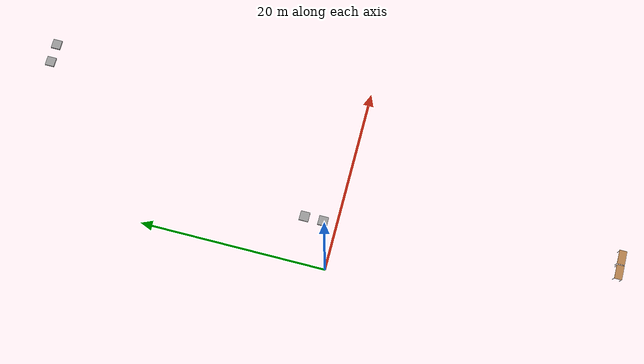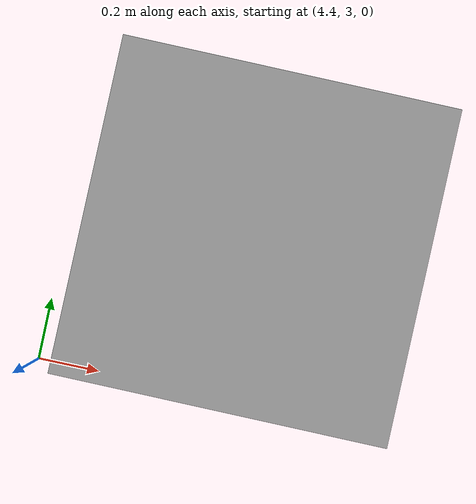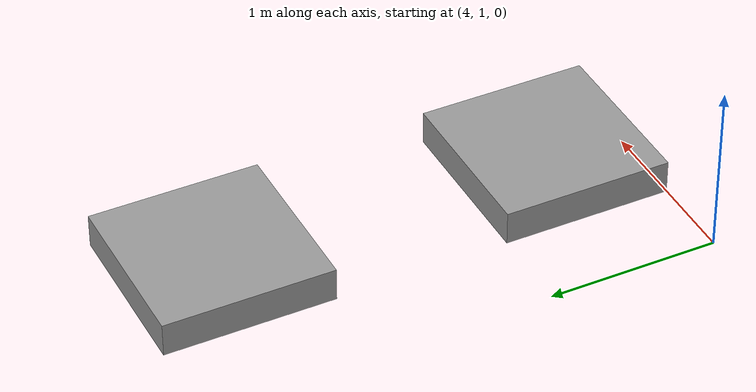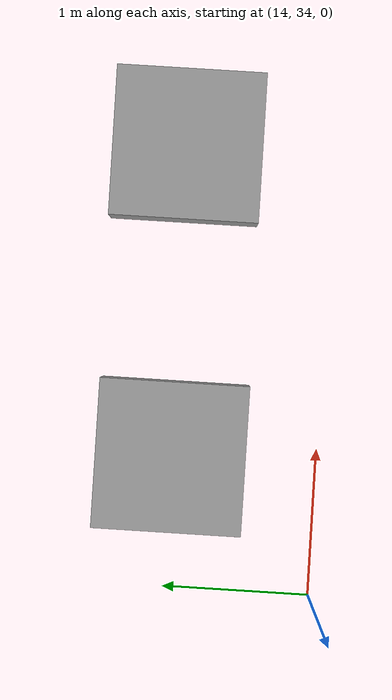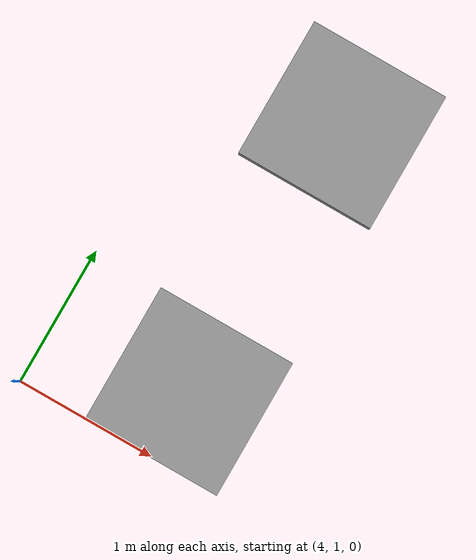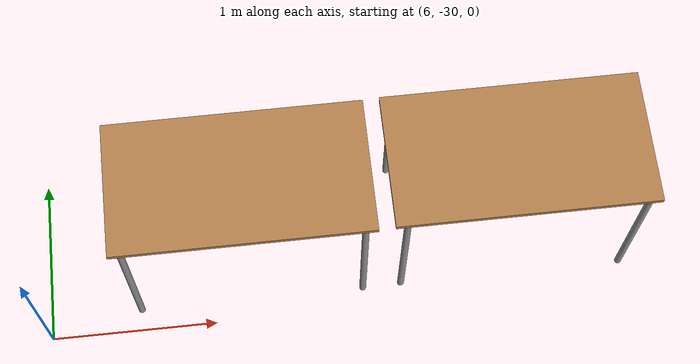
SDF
<sdf version="1.6">
 <world name="default">
  <light name="sun" type="directional">
   <pose>0 0 10 0 -0 0</pose>
   <diffuse>0.8 0.8 0.8 1</diffuse>
   <specular>0.2 0.2 0.2 1</specular>
   <attenuation>
    <range>1000</range>
    <constant>0.9</constant>
    <linear>0.01</linear>
    <quadratic>0.001</quadratic>
   </attenuation>
   <direction>-0.5 0.1 -0.9</direction>
  </light>
  <gravity>0 0 -9.8</gravity>
  <magnetic_field>6e-06 2.3e-05 -4.2e-05</magnetic_field>
  <atmosphere type="adiabatic"/>
  <physics name="default_physics" default="0" type="ode">
   <max_step_size>0.001</max_step_size>
   <real_time_factor>1</real_time_factor>
   <real_time_update_rate>1000</real_time_update_rate>
  </physics>
  <scene><ambient>0.4 0.4 0.4 1</ambient><background>0.7 0.7 0.7 1</background><shadows>1</shadows></scene>
  <audio><device>default</device></audio>
  <spherical_coordinates>
   <surface_model>EARTH_WGS84</surface_model>
   <latitude_deg>0</latitude_deg>
   <longitude_deg>0</longitude_deg>
   <elevation>0</elevation>
   <heading_deg>0</heading_deg>
  </spherical_coordinates>
  <model name="unit_box">
   <link name="link">
    <inertial>
     <mass>1</mass>
     <inertia>
      <ixx>0.166667</ixx>
      <ixy>0</ixy>
      <ixz>0</ixz>
      <iyy>0.166667</iyy>
      <iyz>0</iyz>
      <izz>0.166667</izz>
     </inertia>
    </inertial>
    <visual name="visual">
     <geometry><box><size>1 1 0.2</size></box></geometry>
     <material>
      <script><name>Gazebo/Grey</name><uri>file://media/materials/scripts/gazebo.material</uri></script>
      <shader type="vertex"><normal_map>__default__</normal_map></shader>
      <ambient>0.3 0.3 0.3 1</ambient>
      <diffuse>0.7 0.7 0.7 1</diffuse>
      <specular>0.01 0.01 0.01 1</specular>
      <emissive>0 0 0 1</emissive>
     </material>
    </visual>
    <collision name="collision">
     <geometry><box><size>1 1 0.2</size></box></geometry>
     <surface>
      <friction>
       <ode><mu>1</mu><mu2>1</mu2><fdir1>0 0 0</fdir1><slip1>0</slip1><slip2>0</slip2></ode>
       <torsional>
        <coefficient>1</coefficient>
        <patch_radius>0</patch_radius>
        <surface_radius>0</surface_radius>
        <use_patch_radius>1</use_patch_radius>
        <ode><slip>0</slip></ode>
       </torsional>
      </friction>
      <bounce><restitution_coefficient>0</restitution_coefficient><threshold>1e+06</threshold></bounce>
      <contact>
       <collide_without_contact>0</collide_without_contact>
       <collide_without_contact_bitmask>1</collide_without_contact_bitmask>
       <collide_bitmask>1</collide_bitmask>
       <ode>
        <soft_cfm>0</soft_cfm>
        <soft_erp>0.2</soft_erp>
        <kp>1e+13</kp>
        <kd>1</kd>
        <max_vel>0.01</max_vel>
        <min_depth>0</min_depth>
       </ode>
       <bullet>
        <split_impulse>1</split_impulse>
        <split_impulse_penetration_threshold>-0.01</split_impulse_penetration_threshold>
        <soft_cfm>0</soft_cfm>
        <soft_erp>0.2</soft_erp>
        <kp>1e+13</kp>
        <kd>1</kd>
       </bullet>
      </contact>
     </surface>
    </collision>
   </link>
   <static>0</static>
   <pose>14.9143 34.9914 0.1 0 0 -0.002971</pose>
  </model>
  <model name="unit_box_0">
   <link name="link">
    <inertial>
     <mass>1</mass>
     <inertia>
      <ixx>0.166667</ixx>
      <ixy>0</ixy>
      <ixz>0</ixz>
      <iyy>0.166667</iyy>
      <iyz>0</iyz>
      <izz>0.166667</izz>
     </inertia>
    </inertial>
    <visual name="visual">
     <geometry><box><size>1 1 0.2</size></box></geometry>
     <material>
      <script><name>Gazebo/Grey</name><uri>file://media/materials/scripts/gazebo.material</uri></script>
      <shader type="vertex"><normal_map>__default__</normal_map></shader>
      <ambient>0.3 0.3 0.3 1</ambient>
      <diffuse>0.7 0.7 0.7 1</diffuse>
      <specular>0.01 0.01 0.01 1</specular>
      <emissive>0 0 0 1</emissive>
     </material>
    </visual>
    <collision name="collision">
     <geometry><box><size>1 1 0.2</size></box></geometry>
     <surface>
      <friction>
       <ode><mu>1</mu><mu2>1</mu2><fdir1>0 0 0</fdir1><slip1>0</slip1><slip2>0</slip2></ode>
       <torsional>
        <coefficient>1</coefficient>
        <patch_radius>0</patch_radius>
        <surface_radius>0</surface_radius>
        <use_patch_radius>1</use_patch_radius>
        <ode><slip>0</slip></ode>
       </torsional>
      </friction>
      <bounce><restitution_coefficient>0</restitution_coefficient><threshold>1e+06</threshold></bounce>
      <contact>
       <collide_without_contact>0</collide_without_contact>
       <collide_without_contact_bitmask>1</collide_without_contact_bitmask>
       <collide_bitmask>1</collide_bitmask>
       <ode>
        <soft_cfm>0</soft_cfm>
        <soft_erp>0.2</soft_erp>
        <kp>1e+13</kp>
        <kd>1</kd>
        <max_vel>0.01</max_vel>
        <min_depth>0</min_depth>
       </ode>
       <bullet>
        <split_impulse>1</split_impulse>
        <split_impulse_penetration_threshold>-0.01</split_impulse_penetration_threshold>
        <soft_cfm>0</soft_cfm>
        <soft_erp>0.2</soft_erp>
        <kp>1e+13</kp>
        <kd>1</kd>
       </bullet>
      </contact>
     </surface>
    </collision>
   </link>
   <static>0</static>
   <pose>17 35 0.1 0 0 -0.000244</pose>
  </model>
  <model name="unit_box_1">
   <link name="link">
    <inertial>
     <mass>1</mass>
     <inertia>
      <ixx>0.166667</ixx>
      <ixy>0</ixy>
      <ixz>0</ixz>
      <iyy>0.166667</iyy>
      <iyz>0</iyz>
      <izz>0.166667</izz>
     </inertia>
    </inertial>
    <visual name="visual">
     <geometry><box><size>1 1 0.2</size></box></geometry>
     <material>
      <script><name>Gazebo/Grey</name><uri>file://media/materials/scripts/gazebo.material</uri></script>
      <shader type="vertex"><normal_map>__default__</normal_map></shader>
      <ambient>0.3 0.3 0.3 1</ambient>
      <diffuse>0.7 0.7 0.7 1</diffuse>
      <specular>0.01 0.01 0.01 1</specular>
      <emissive>0 0 0 1</emissive>
     </material>
    </visual>
    <collision name="collision">
     <geometry><box><size>1 1 0.2</size></box></geometry>
     <surface>
      <friction>
       <ode><mu>1</mu><mu2>1</mu2><fdir1>0 0 0</fdir1><slip1>0</slip1><slip2>0</slip2></ode>
       <torsional>
        <coefficient>1</coefficient>
        <patch_radius>0</patch_radius>
        <surface_radius>0</surface_radius>
        <use_patch_radius>1</use_patch_radius>
        <ode><slip>0</slip></ode>
       </torsional>
      </friction>
      <bounce><restitution_coefficient>0</restitution_coefficient><threshold>1e+06</threshold></bounce>
      <contact>
       <collide_without_contact>0</collide_without_contact>
       <collide_without_contact_bitmask>1</collide_without_contact_bitmask>
       <collide_bitmask>1</collide_bitmask>
       <ode>
        <soft_cfm>0</soft_cfm>
        <soft_erp>0.2</soft_erp>
        <kp>1e+13</kp>
        <kd>1</kd>
        <max_vel>0.01</max_vel>
        <min_depth>0</min_depth>
       </ode>
       <bullet>
        <split_impulse>1</split_impulse>
        <split_impulse_penetration_threshold>-0.01</split_impulse_penetration_threshold>
        <soft_cfm>0</soft_cfm>
        <soft_erp>0.2</soft_erp>
        <kp>1e+13</kp>
        <kd>1</kd>
       </bullet>
      </contact>
     </surface>
    </collision>
   </link>
   <static>0</static>
   <pose>5 1.5 0.1 0 -0 0</pose>
  </model>
  <model name="unit_box_2">
   <link name="link">
    <inertial>
     <mass>1</mass>
     <inertia>
      <ixx>0.166667</ixx>
      <ixy>0</ixy>
      <ixz>0</ixz>
      <iyy>0.166667</iyy>
      <iyz>0</iyz>
      <izz>0.166667</izz>
     </inertia>
    </inertial>
    <visual name="visual">
     <geometry><box><size>1 1 0.2</size></box></geometry>
     <material>
      <script><name>Gazebo/Grey</name><uri>file://media/materials/scripts/gazebo.material</uri></script>
      <shader type="vertex"><normal_map>__default__</normal_map></shader>
      <ambient>0.3 0.3 0.3 1</ambient>
      <diffuse>0.7 0.7 0.7 1</diffuse>
      <specular>0.01 0.01 0.01 1</specular>
      <emissive>0 0 0 1</emissive>
     </material>
    </visual>
    <collision name="collision">
     <geometry><box><size>1 1 0.2</size></box></geometry>
     <surface>
      <friction>
       <ode><mu>1</mu><mu2>1</mu2><fdir1>0 0 0</fdir1><slip1>0</slip1><slip2>0</slip2></ode>
       <torsional>
        <coefficient>1</coefficient>
        <patch_radius>0</patch_radius>
        <surface_radius>0</surface_radius>
        <use_patch_radius>1</use_patch_radius>
        <ode><slip>0</slip></ode>
       </torsional>
      </friction>
      <bounce><restitution_coefficient>0</restitution_coefficient><threshold>1e+06</threshold></bounce>
      <contact>
       <collide_without_contact>0</collide_without_contact>
       <collide_without_contact_bitmask>1</collide_without_contact_bitmask>
       <collide_bitmask>1</collide_bitmask>
       <ode>
        <soft_cfm>0</soft_cfm>
        <soft_erp>0.2</soft_erp>
        <kp>1e+13</kp>
        <kd>1</kd>
        <max_vel>0.01</max_vel>
        <min_depth>0</min_depth>
       </ode>
       <bullet>
        <split_impulse>1</split_impulse>
        <split_impulse_penetration_threshold>-0.01</split_impulse_penetration_threshold>
        <soft_cfm>0</soft_cfm>
        <soft_erp>0.2</soft_erp>
        <kp>1e+13</kp>
        <kd>1</kd>
       </bullet>
      </contact>
     </surface>
    </collision>
   </link>
   <static>0</static>
   <pose>4.99925 3.52222 0.1 0 0 -0.000992</pose>
  </model>
  <model name="table">
   <static>1</static>
   <link name="link">
    <collision name="surface">
     <pose>0 0 1 0 -0 0</pose>
     <geometry><box><size>1.5 0.8 0.03</size></box></geometry>
     <surface><friction><ode><mu>0.6</mu><mu2>0.6</mu2></ode></friction></surface>
    </collision>
    <visual name="visual1">
     <pose>0 0 1 0 -0 0</pose>
     <geometry><box><size>1.5 0.8 0.03</size></box></geometry>
     <material>
      <script><uri>file://media/materials/scripts/gazebo.material</uri><name>Gazebo/Wood</name></script>
     </material>
    </visual>
    <collision name="front_left_leg">
     <pose>0.68 0.38 0.5 0 -0 0</pose>
     <geometry><cylinder><radius>0.02</radius><length>1</length></cylinder></geometry>
    </collision>
    <visual name="front_left_leg">
     <pose>0.68 0.38 0.5 0 -0 0</pose>
     <geometry><cylinder><radius>0.02</radius><length>1</length></cylinder></geometry>
     <material>
      <script><uri>file://media/materials/scripts/gazebo.material</uri><name>Gazebo/Grey</name></script>
     </material>
    </visual>
    <collision name="front_right_leg">
     <pose>0.68 -0.38 0.5 0 -0 0</pose>
     <geometry><cylinder><radius>0.02</radius><length>1</length></cylinder></geometry>
    </collision>
    <visual name="front_right_leg">
     <pose>0.68 -0.38 0.5 0 -0 0</pose>
     <geometry><cylinder><radius>0.02</radius><length>1</length></cylinder></geometry>
     <material>
      <script><uri>file://media/materials/scripts/gazebo.material</uri><name>Gazebo/Grey</name></script>
     </material>
    </visual>
    <collision name="back_right_leg">
     <pose>-0.68 -0.38 0.5 0 -0 0</pose>
     <geometry><cylinder><radius>0.02</radius><length>1</length></cylinder></geometry>
    </collision>
    <visual name="back_right_leg">
     <pose>-0.68 -0.38 0.5 0 -0 0</pose>
     <geometry><cylinder><radius>0.02</radius><length>1</length></cylinder></geometry>
     <material>
      <script><uri>file://media/materials/scripts/gazebo.material</uri><name>Gazebo/Grey</name></script>
     </material>
    </visual>
    <collision name="back_left_leg">
     <pose>-0.68 0.38 0.5 0 -0 0</pose>
     <geometry><cylinder><radius>0.02</radius><length>1</length></cylinder></geometry>
    </collision>
    <visual name="back_left_leg">
     <pose>-0.68 0.38 0.5 0 -0 0</pose>
     <geometry><cylinder><radius>0.02</radius><length>1</length></cylinder></geometry>
     <material>
      <script><uri>file://media/materials/scripts/gazebo.material</uri><name>Gazebo/Grey</name></script>
     </material>
    </visual>
   </link>
   <pose>8.82116 -29.4816 0 0 -0 0</pose>
  </model>
  <model name="table_clone">
   <static>1</static>
   <link name="link">
    <collision name="surface">
     <pose>0 0 1 0 -0 0</pose>
     <geometry><box><size>1.5 0.8 0.03</size></box></geometry>
     <surface><friction><ode><mu>0.6</mu><mu2>0.6</mu2></ode></friction></surface>
    </collision>
    <visual name="visual1">
     <pose>0 0 1 0 -0 0</pose>
     <geometry><box><size>1.5 0.8 0.03</size></box></geometry>
     <material>
      <script><uri>file://media/materials/scripts/gazebo.material</uri><name>Gazebo/Wood</name></script>
     </material>
    </visual>
    <collision name="front_left_leg">
     <pose>0.68 0.38 0.5 0 -0 0</pose>
     <geometry><cylinder><radius>0.02</radius><length>1</length></cylinder></geometry>
    </collision>
    <visual name="front_left_leg">
     <pose>0.68 0.38 0.5 0 -0 0</pose>
     <geometry><cylinder><radius>0.02</radius><length>1</length></cylinder></geometry>
     <material>
      <script><uri>file://media/materials/scripts/gazebo.material</uri><name>Gazebo/Grey</name></script>
     </material>
    </visual>
    <collision name="front_right_leg">
     <pose>0.68 -0.38 0.5 0 -0 0</pose>
     <geometry><cylinder><radius>0.02</radius><length>1</length></cylinder></geometry>
    </collision>
    <visual name="front_right_leg">
     <pose>0.68 -0.38 0.5 0 -0 0</pose>
     <geometry><cylinder><radius>0.02</radius><length>1</length></cylinder></geometry>
     <material>
      <script><uri>file://media/materials/scripts/gazebo.material</uri><name>Gazebo/Grey</name></script>
     </material>
    </visual>
    <collision name="back_right_leg">
     <pose>-0.68 -0.38 0.5 0 -0 0</pose>
     <geometry><cylinder><radius>0.02</radius><length>1</length></cylinder></geometry>
    </collision>
    <visual name="back_right_leg">
     <pose>-0.68 -0.38 0.5 0 -0 0</pose>
     <geometry><cylinder><radius>0.02</radius><length>1</length></cylinder></geometry>
     <material>
      <script><uri>file://media/materials/scripts/gazebo.material</uri><name>Gazebo/Grey</name></script>
     </material>
    </visual>
    <collision name="back_left_leg">
     <pose>-0.68 0.38 0.5 0 -0 0</pose>
     <geometry><cylinder><radius>0.02</radius><length>1</length></cylinder></geometry>
    </collision>
    <visual name="back_left_leg">
     <pose>-0.68 0.38 0.5 0 -0 0</pose>
     <geometry><cylinder><radius>0.02</radius><length>1</length></cylinder></geometry>
     <material>
      <script><uri>file://media/materials/scripts/gazebo.material</uri><name>Gazebo/Grey</name></script>
     </material>
    </visual>
   </link>
   <pose>7.22553 -29.4879 0 0 -0 0</pose>
  </model>
 </world>
</sdf>
